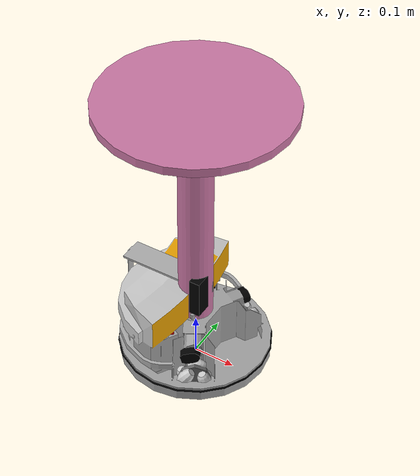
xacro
<?xml version="1.0"?>
<robot name="robotino" xmlns:xacro="http://wiki.ros.org/xacro">
    <xacro:include filename="$(find robotino_description)/urdf/robotino_body.urdf.xacro" />
    <xacro:include filename="$(find robotino_description)/urdf/robotino_parts.urdf.xacro" />
    <xacro:robotino_body />
    <!-- add platform -->
    <xacro:platform name="platform" parent="base_link">
      <origin xyz="0.0 0.0 0.13" rpy="0 0 0" />
    </xacro:platform>
</robot>

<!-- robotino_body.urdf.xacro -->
<robot name="robotino_body" xmlns:xacro="http://www.ros.org/wiki/xacro">
    <xacro:property name="M_PI" value="3.14159"/>
    <xacro:property name="M_SCALE" value="0.01"/>
    <xacro:property name="BASE_RADIUS" value="0.18"/>
    <xacro:property name="BASE_HEIGHT" value="0.05"/>
    <xacro:property name="BASE_MASS" value="20"/>
    <!-- robotino_body -->
    <xacro:macro name="robotino_body">
        <!-- base_link -->
        <link name="base_link">
            <inertial>
                <mass value="${BASE_MASS}" />
                <origin xyz="0 0 0" />
                <inertia ixx="1.0" ixy="0.0" ixz="0.0"
                    iyy="1.0" iyz="0.0"
                    izz="1.0" />
            </inertial>
            <visual>
                <origin xyz="0.01 0 0" rpy="0 0 ${M_PI/2}"/>
                <geometry>
                    <mesh filename="$(find robotino_description)/meshes/parts/robotino_base.dae"
                        scale="${M_SCALE} ${M_SCALE} ${M_SCALE}"/>
                </geometry>
            </visual>
            <collision>
                <origin xyz="0 0 ${BASE_HEIGHT/2}" rpy="0 0 0" />
                <geometry>
                    <cylinder radius="${BASE_RADIUS}" length="${BASE_HEIGHT}"/>
                </geometry>
            </collision>
        </link>
        <!-- wheels -->
        <xacro:wheel name="wheel0" parent="base_link">
            <origin xyz="0.065 0.11 0.04" rpy="0 0 ${M_PI/3}"/>
            <axis xyz="-1 0 0"/>
        </xacro:wheel>
        <xacro:wheel name="wheel1" parent="base_link">
            <origin xyz="-0.13 0 0.04" rpy="0 0 0"/>
            <axis xyz="1 0 0"/>
        </xacro:wheel>
        <xacro:wheel name="wheel2" parent="base_link">
            <origin xyz="0.065 -0.11 0.04" rpy="0 0 -${M_PI/3}"/>
            <axis xyz="-1 0 0"/>
        </xacro:wheel>
        <!-- others -->
        <xacro:command_bridge name="command_bridge" parent="base_link">
            <origin xyz="-0.05 0 0.13" rpy="0 0 ${M_PI/2}"/>
        </xacro:command_bridge>
        <xacro:anglebracketusb name="anglebracketusb" parent="base_link">
            <origin xyz="0.008 0 0.137" rpy="0 0 ${M_PI/2}"/>
        </xacro:anglebracketusb>
        <!-- gazebo control -->
        <gazebo>
            <plugin filename="ignition-gazebo-odometry-publisher-system"
              name="ignition::gazebo::systems::OdometryPublisher">
            </plugin>
            <plugin filename="ignition-gazebo-velocity-control-system"
              name="ignition::gazebo::systems::VelocityControl">
            </plugin>
        </gazebo>
    </xacro:macro>
</robot>

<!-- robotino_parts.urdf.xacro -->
<robot name="robotino_parts" xmlns:xacro="http://www.ros.org/wiki/xacro">
    <xacro:property name="M_PI" value="3.14159"/>
    <xacro:property name="M_SCALE" value="0.01"/>
    <xacro:property name="PLATFORM_HEIGHT" value="0.58"/>
    <xacro:property name="PLATFORM_RADIUS" value="0.22"/>
    <!-- wheel -->
    <xacro:macro name="wheel" params="parent name *origin *axis">
        <link name="${name}_link">
            <inertial>
                <mass value="0.00001"/>
                <origin xyz="0 0 0"/>
                <inertia ixx="1.0" ixy="0.0" ixz="0.0" iyy="1.0" iyz="0.0" izz="1.0"/>
            </inertial>
            <visual>
                <origin xyz="0 0 0" rpy="0 0 0"/>
                <geometry>
                    <mesh filename="$(find robotino_description)/meshes/parts/robotino_wheel.dae" scale="${M_SCALE} ${M_SCALE} ${M_SCALE}"/>
                </geometry>
            </visual>
        </link>
        <joint name="${name}_joint" type="continuous">
            <xacro:insert_block name="origin" />
            <xacro:insert_block name="axis"/>
            <parent link="${parent}"/>
            <child link="${name}_link"/>
        </joint>
        <transmission name="${name}_joint_trans">
            <type>transmissio_interface/SimpleTransmission</type>
            <joint name="${name}_joint">
                <hardwareInterface>EffortJointInterface</hardwareInterface>
            </joint>
            <actuator name="${name}_motor">
                <mechanicalReducation>1</mechanicalReducation>
            </actuator>
        </transmission>
    </xacro:macro>
    <!-- command bridge -->
    <xacro:macro name="command_bridge" params="parent name *origin">
        <link name="${name}_link">
            <inertial>
                <mass value="0.00001"/>
                <origin xyz="0 0 0"/>
                <inertia ixx="1.0" ixy="0.0" ixz="0.0" iyy="1.0" iyz="0.0" izz="1.0"/>
            </inertial>
            <collision>
                <origin xyz="0 0 0" rpy="0 0 0"/>
                <geometry>
                    <box size="0.25 0.11 0.16"/>
                </geometry>
            </collision>
        </link>
        <joint name="${name}_joint" type="fixed">
            <xacro:insert_block name="origin"/>
            <parent link="${parent}"/>
            <child link="${name}_link"/>
        </joint>
    </xacro:macro>
    <!-- angle bracket with USB hub -->
    <xacro:macro name="anglebracketusb" params="parent name *origin">
        <link name="${name}_link">
            <inertial>
                <mass value="0.00001"/>
                <origin xyz="0 0 0"/>
                <inertia ixx="1.0" ixy="0.0" ixz="0.0" iyy="1.0" iyz="0.0" izz="1.0"/>
            </inertial>
            <visual>
                <origin xyz="0 0 0" rpy="0 0 0"/>
                <geometry>
                    <mesh filename="$(find robotino_description)/meshes/parts/angle_bracket_usb_hub.dae" scale="${M_SCALE} ${M_SCALE} ${M_SCALE}"/>
                </geometry>
            </visual>
        </link>
        <joint name="${name}_joint" type="fixed">
            <xacro:insert_block name="origin"/>
            <parent link="${parent}"/>
            <child link="${name}_link"/>
        </joint>
    </xacro:macro>
    <!-- platform -->
    <xacro:macro name="platform" params="parent name *origin">
        <link name="${name}_link">
            <inertial>
                <mass value="0.00001"/>
                <origin xyz="0 0 0"/>
                <inertia ixx="1.0" ixy="0.0" ixz="0.0" iyy="1.0" iyz="0.0" izz="1.0"/>
            </inertial>
            <visual>
                <origin xyz="0 0 ${PLATFORM_HEIGHT/2}"/>
                <geometry>
                    <cylinder radius="0.04" length="${PLATFORM_HEIGHT}"/>
                </geometry>
            </visual>
            <visual>
                <origin xyz="0 0 ${PLATFORM_HEIGHT}"/>
                <geometry>
                    <!-- actual length = 0.015 -->
                    <cylinder radius="${PLATFORM_RADIUS}" length="0.02"/>
                </geometry>
            </visual>
        </link>
        <joint name="${name}_joint" type="fixed">
            <xacro:insert_block name="origin"/>
            <parent link="${parent}"/>
            <child link="${name}_link"/>
        </joint>
    </xacro:macro>
</robot>
